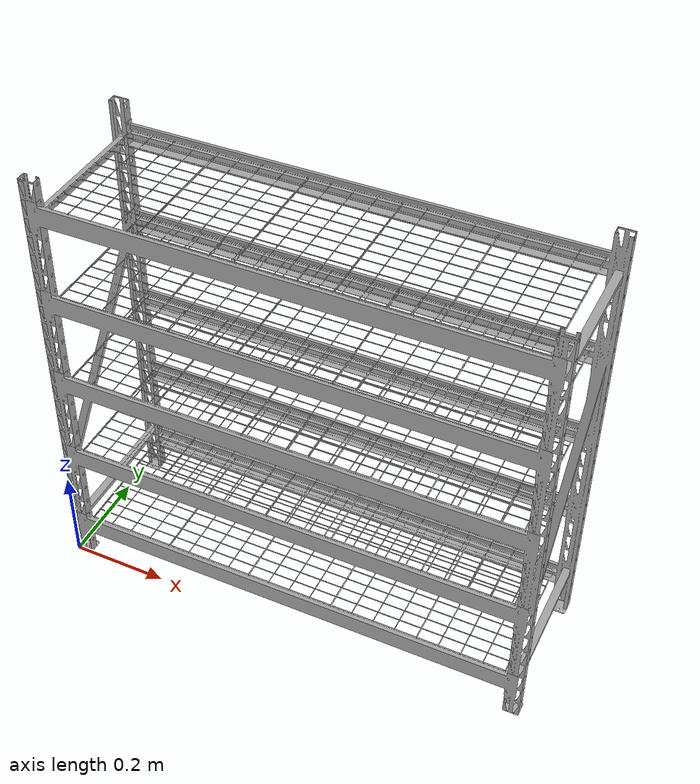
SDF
<?xml version="1.0" ?>
<sdf version="1.5">
  <model name="storage_rack">
    <static>true</static>
    <link name="storage_rack_link">
        <collision name="storage_rack_collision">
         <geometry>
            <mesh>
                <uri>model://storage_rack/meshes/model.dae</uri>
                <scale>0.5 0.5 0.5</scale>
            </mesh>
        </geometry>
      </collision>

      <visual name="storage_rack_mesh">
        <cast_shadows>true</cast_shadows>
        <geometry>
            <mesh>
                <uri>model://storage_rack/meshes/model.dae</uri>
                <scale>0.5 0.5 0.5</scale>
            </mesh>
        </geometry>
      </visual>
    </link>
  </model>
</sdf>
